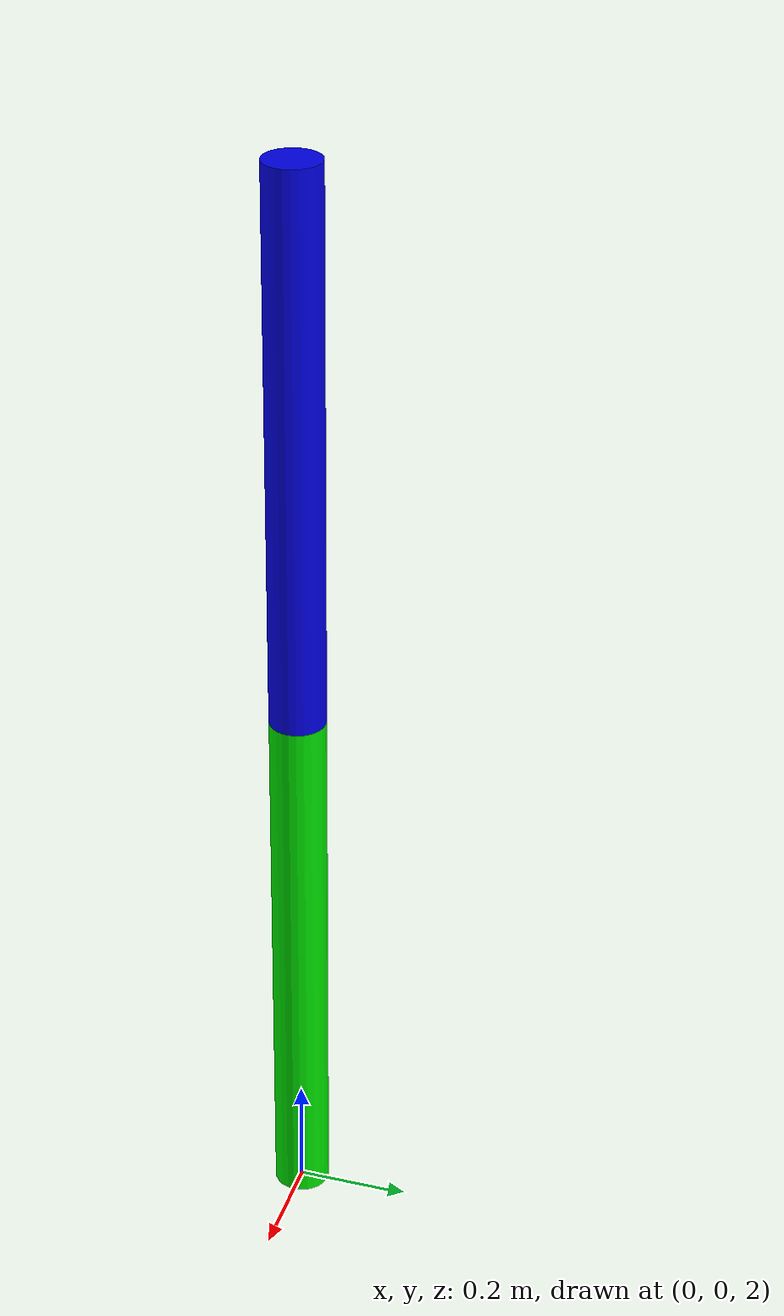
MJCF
<mujoco>

	<option timestep="0.001" integrator="RK4">
		<flag contact="disable" energy="enable"/>
	</option>

	<worldbody>
    <light diffuse=".5 .5 .5" pos="0 0 3" dir="0 0 -1"/>
		<geom type="plane" size="1 1 0.1" rgba=".9 0 0 1"/>
		<body pos="0 0 2.5" euler="0 180 0">
			<joint name="pin" type="hinge" pos="0 0 0.5" axis="0 -1 0" />
			<geom type="cylinder" size=".05 .5" rgba="0 .9 0 1" />
			<inertial mass="1" pos="0 0 0" diaginertia="0.1 0.1 0.1"/>
			<body pos="0 0 -1" euler="0 0 0">
				<joint name="pin2" type="hinge" pos="0 0 0.5" axis="0 -1 0" />
				<geom type="cylinder" size=".05 .5" rgba="0 0 0.9 1" />
				<inertial mass="1" pos="0 0 0" diaginertia="0.1 0.1 0.1"/>
			</body>
		</body>
	</worldbody>

	<actuator>
		<motor name="torque2" joint="pin2" gear="1" ctrlrange="-1000 1000" ctrllimited="true"/>
	</actuator>

</mujoco>
